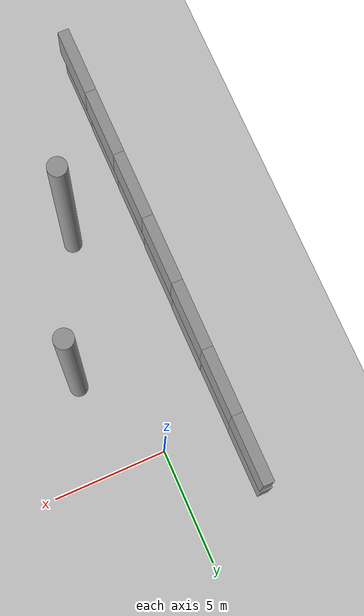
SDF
<sdf version="1.6">
 <world name="default">
  <light name="sun" type="directional">
   <pose>0 0 10 0 -0 0</pose>
   <diffuse>0.8 0.8 0.8 1</diffuse>
   <specular>0.2 0.2 0.2 1</specular>
   <attenuation>
    <range>1000</range>
    <constant>0.9</constant>
    <linear>0.01</linear>
    <quadratic>0.001</quadratic>
   </attenuation>
   <direction>-0.5 0.1 -0.9</direction>
  </light>
  <model name="ground_plane">
   <static>1</static>
   <link name="link">
    <collision name="collision">
     <geometry><plane><normal>0 0 1</normal><size>100 100</size></plane></geometry>
     <surface><friction><ode><mu>100</mu><mu2>50</mu2></ode></friction></surface>
    </collision>
    <visual name="visual">
     <cast_shadows>0</cast_shadows>
     <geometry><plane><normal>0 0 1</normal><size>100 100</size></plane></geometry>
     <material>
      <script><uri>file://media/materials/scripts/gazebo.material</uri><name>Gazebo/Grey</name></script>
     </material>
    </visual>
   </link>
  </model>
  <gravity>0 0 -9.8</gravity>
  <magnetic_field>6e-06 2.3e-05 -4.2e-05</magnetic_field>
  <atmosphere type="adiabatic"/>
  <physics name="default_physics" default="0" type="ode">
   <max_step_size>0.004</max_step_size>
   <real_time_factor>1</real_time_factor>
   <real_time_update_rate>250</real_time_update_rate>
  </physics>
  <scene><ambient>0.4 0.4 0.4 1</ambient><background>0.7 0.7 0.7 1</background><shadows>1</shadows></scene>
  <spherical_coordinates>
   <surface_model>EARTH_WGS84</surface_model>
   <latitude_deg>0</latitude_deg>
   <longitude_deg>0</longitude_deg>
   <elevation>0</elevation>
   <heading_deg>0</heading_deg>
  </spherical_coordinates>
  <model name="column">
   <pose>2.24004 -4 5 0 -0 0</pose>
   <static>1</static>
   <link name="link">
    <inertial>
     <mass>100</mass>
     <inertia><ixx>0.83</ixx><ixy>0</ixy><ixz>0</ixz><iyy>0.83</iyy><iyz>0</iyz><izz>0.83</izz></inertia>
    </inertial>
    <collision name="collision">
     <geometry><cylinder><radius>0.4</radius><length>10</length></cylinder></geometry>
    </collision>
    <visual name="visual">
     <geometry><cylinder><radius>0.4</radius><length>10</length></cylinder></geometry>
     <material>
      <script><uri>file://media/materials/scripts/gazebo.material</uri><name>Gazebo/Grey</name></script>
     </material>
    </visual>
   </link>
  </model>
  <model name="column_clone">
   <pose>0 -10 5 0 -0 0</pose>
   <static>1</static>
   <link name="link">
    <inertial>
     <mass>100</mass>
     <inertia><ixx>0.83</ixx><ixy>0</ixy><ixz>0</ixz><iyy>0.83</iyy><iyz>0</iyz><izz>0.83</izz></inertia>
    </inertial>
    <collision name="collision">
     <geometry><cylinder><radius>0.4</radius><length>10</length></cylinder></geometry>
    </collision>
    <visual name="visual">
     <geometry><cylinder><radius>0.4</radius><length>10</length></cylinder></geometry>
     <material>
      <script><uri>file://media/materials/scripts/gazebo.material</uri><name>Gazebo/Grey</name></script>
     </material>
    </visual>
   </link>
  </model>
  <model name="wall">
   <pose>-3.0634 1.77145 1 0 -0 0</pose>
   <static>1</static>
   <link name="link">
    <inertial>
     <mass>100</mass>
     <inertia><ixx>0.83</ixx><ixy>0</ixy><ixz>0</ixz><iyy>0.83</iyy><iyz>0</iyz><izz>0.83</izz></inertia>
    </inertial>
    <collision name="collision"><geometry><box><size>0.5 3 2</size></box></geometry></collision>
    <visual name="visual">
     <geometry><box><size>0.5 3 2</size></box></geometry>
     <material>
      <script><uri>file://media/materials/scripts/gazebo.material</uri><name>Gazebo/Grey</name></script>
     </material>
    </visual>
   </link>
  </model>
  <model name="wall_clone">
   <pose>-3.07065 -1.2088 1 0 -0 0</pose>
   <static>1</static>
   <link name="link">
    <inertial>
     <mass>100</mass>
     <inertia><ixx>0.83</ixx><ixy>0</ixy><ixz>0</ixz><iyy>0.83</iyy><iyz>0</iyz><izz>0.83</izz></inertia>
    </inertial>
    <collision name="collision"><geometry><box><size>0.5 3 2</size></box></geometry></collision>
    <visual name="visual">
     <geometry><box><size>0.5 3 2</size></box></geometry>
     <material>
      <script><uri>file://media/materials/scripts/gazebo.material</uri><name>Gazebo/Grey</name></script>
     </material>
    </visual>
   </link>
  </model>
  <model name="wall_clone_0">
   <pose>-3.05211 -4.11317 1 0 -0 0</pose>
   <static>1</static>
   <link name="link">
    <inertial>
     <mass>100</mass>
     <inertia><ixx>0.83</ixx><ixy>0</ixy><ixz>0</ixz><iyy>0.83</iyy><iyz>0</iyz><izz>0.83</izz></inertia>
    </inertial>
    <collision name="collision"><geometry><box><size>0.5 3 2</size></box></geometry></collision>
    <visual name="visual">
     <geometry><box><size>0.5 3 2</size></box></geometry>
     <material>
      <script><uri>file://media/materials/scripts/gazebo.material</uri><name>Gazebo/Grey</name></script>
     </material>
    </visual>
   </link>
  </model>
  <model name="wall_clone_1">
   <pose>-3.06986 -7.12548 1 0 -0 0</pose>
   <static>1</static>
   <link name="link">
    <inertial>
     <mass>100</mass>
     <inertia><ixx>0.83</ixx><ixy>0</ixy><ixz>0</ixz><iyy>0.83</iyy><iyz>0</iyz><izz>0.83</izz></inertia>
    </inertial>
    <collision name="collision"><geometry><box><size>0.5 3 2</size></box></geometry></collision>
    <visual name="visual">
     <geometry><box><size>0.5 3 2</size></box></geometry>
     <material>
      <script><uri>file://media/materials/scripts/gazebo.material</uri><name>Gazebo/Grey</name></script>
     </material>
    </visual>
   </link>
  </model>
  <model name="wall_clone_2">
   <pose>-3.09603 -10.0734 1 0 -0 0</pose>
   <static>1</static>
   <link name="link">
    <inertial>
     <mass>100</mass>
     <inertia><ixx>0.83</ixx><ixy>0</ixy><ixz>0</ixz><iyy>0.83</iyy><iyz>0</iyz><izz>0.83</izz></inertia>
    </inertial>
    <collision name="collision"><geometry><box><size>0.5 3 2</size></box></geometry></collision>
    <visual name="visual">
     <geometry><box><size>0.5 3 2</size></box></geometry>
     <material>
      <script><uri>file://media/materials/scripts/gazebo.material</uri><name>Gazebo/Grey</name></script>
     </material>
    </visual>
   </link>
  </model>
  <model name="wall_clone_3">
   <pose>-3.10778 -13.0763 1 0 -0 0</pose>
   <static>1</static>
   <link name="link">
    <inertial>
     <mass>100</mass>
     <inertia><ixx>0.83</ixx><ixy>0</ixy><ixz>0</ixz><iyy>0.83</iyy><iyz>0</iyz><izz>0.83</izz></inertia>
    </inertial>
    <collision name="collision"><geometry><box><size>0.5 3 2</size></box></geometry></collision>
    <visual name="visual">
     <geometry><box><size>0.5 3 2</size></box></geometry>
     <material>
      <script><uri>file://media/materials/scripts/gazebo.material</uri><name>Gazebo/Grey</name></script>
     </material>
    </visual>
   </link>
  </model>
  <model name="wall_clone_4">
   <pose>-3.12562 -16.0775 1 0 -0 0</pose>
   <static>1</static>
   <link name="link">
    <inertial>
     <mass>100</mass>
     <inertia><ixx>0.83</ixx><ixy>0</ixy><ixz>0</ixz><iyy>0.83</iyy><iyz>0</iyz><izz>0.83</izz></inertia>
    </inertial>
    <collision name="collision"><geometry><box><size>0.5 3 2</size></box></geometry></collision>
    <visual name="visual">
     <geometry><box><size>0.5 3 2</size></box></geometry>
     <material>
      <script><uri>file://media/materials/scripts/gazebo.material</uri><name>Gazebo/Grey</name></script>
     </material>
    </visual>
   </link>
  </model>
  <model name="wall_clone_5">
   <pose>-3 1.7 3 0 -0 0</pose>
   <static>1</static>
   <link name="link">
    <inertial>
     <mass>100</mass>
     <inertia><ixx>0.83</ixx><ixy>0</ixy><ixz>0</ixz><iyy>0.83</iyy><iyz>0</iyz><izz>0.83</izz></inertia>
    </inertial>
    <collision name="collision"><geometry><box><size>0.5 3 2</size></box></geometry></collision>
    <visual name="visual">
     <geometry><box><size>0.5 3 2</size></box></geometry>
     <material>
      <script><uri>file://media/materials/scripts/gazebo.material</uri><name>Gazebo/Grey</name></script>
     </material>
    </visual>
   </link>
  </model>
  <model name="wall_clone_clone">
   <pose>-3 -1.2 3 0 -0 0</pose>
   <static>1</static>
   <link name="link">
    <inertial>
     <mass>100</mass>
     <inertia><ixx>0.83</ixx><ixy>0</ixy><ixz>0</ixz><iyy>0.83</iyy><iyz>0</iyz><izz>0.83</izz></inertia>
    </inertial>
    <collision name="collision"><geometry><box><size>0.5 3 2</size></box></geometry></collision>
    <visual name="visual">
     <geometry><box><size>0.5 3 2</size></box></geometry>
     <material>
      <script><uri>file://media/materials/scripts/gazebo.material</uri><name>Gazebo/Grey</name></script>
     </material>
    </visual>
   </link>
  </model>
  <model name="wall_clone_0_clone">
   <pose>-3 -4.2 3 0 -0 0</pose>
   <static>1</static>
   <link name="link">
    <inertial>
     <mass>100</mass>
     <inertia><ixx>0.83</ixx><ixy>0</ixy><ixz>0</ixz><iyy>0.83</iyy><iyz>0</iyz><izz>0.83</izz></inertia>
    </inertial>
    <collision name="collision"><geometry><box><size>0.5 3 2</size></box></geometry></collision>
    <visual name="visual">
     <geometry><box><size>0.5 3 2</size></box></geometry>
     <material>
      <script><uri>file://media/materials/scripts/gazebo.material</uri><name>Gazebo/Grey</name></script>
     </material>
    </visual>
   </link>
  </model>
  <model name="wall_clone_1_clone">
   <pose>-3 -7.2 3 0 -0 0</pose>
   <static>1</static>
   <link name="link">
    <inertial>
     <mass>100</mass>
     <inertia><ixx>0.83</ixx><ixy>0</ixy><ixz>0</ixz><iyy>0.83</iyy><iyz>0</iyz><izz>0.83</izz></inertia>
    </inertial>
    <collision name="collision"><geometry><box><size>0.5 3 2</size></box></geometry></collision>
    <visual name="visual">
     <geometry><box><size>0.5 3 2</size></box></geometry>
     <material>
      <script><uri>file://media/materials/scripts/gazebo.material</uri><name>Gazebo/Grey</name></script>
     </material>
    </visual>
   </link>
  </model>
  <model name="wall_clone_2_clone">
   <pose>-3 -10.2 3 0 -0 0</pose>
   <static>1</static>
   <link name="link">
    <inertial>
     <mass>100</mass>
     <inertia><ixx>0.83</ixx><ixy>0</ixy><ixz>0</ixz><iyy>0.83</iyy><iyz>0</iyz><izz>0.83</izz></inertia>
    </inertial>
    <collision name="collision"><geometry><box><size>0.5 3 2</size></box></geometry></collision>
    <visual name="visual">
     <geometry><box><size>0.5 3 2</size></box></geometry>
     <material>
      <script><uri>file://media/materials/scripts/gazebo.material</uri><name>Gazebo/Grey</name></script>
     </material>
    </visual>
   </link>
  </model>
  <model name="wall_clone_3_clone">
   <pose>-3 -13.2 3 0 -0 0</pose>
   <static>1</static>
   <link name="link">
    <inertial>
     <mass>100</mass>
     <inertia><ixx>0.83</ixx><ixy>0</ixy><ixz>0</ixz><iyy>0.83</iyy><iyz>0</iyz><izz>0.83</izz></inertia>
    </inertial>
    <collision name="collision"><geometry><box><size>0.5 3 2</size></box></geometry></collision>
    <visual name="visual">
     <geometry><box><size>0.5 3 2</size></box></geometry>
     <material>
      <script><uri>file://media/materials/scripts/gazebo.material</uri><name>Gazebo/Grey</name></script>
     </material>
    </visual>
   </link>
  </model>
  <model name="wall_clone_4_clone">
   <pose>-3 -16.2 3 0 -0 0</pose>
   <static>1</static>
   <link name="link">
    <inertial>
     <mass>100</mass>
     <inertia><ixx>0.83</ixx><ixy>0</ixy><ixz>0</ixz><iyy>0.83</iyy><iyz>0</iyz><izz>0.83</izz></inertia>
    </inertial>
    <collision name="collision"><geometry><box><size>0.5 3 2</size></box></geometry></collision>
    <visual name="visual">
     <geometry><box><size>0.5 3 2</size></box></geometry>
     <material>
      <script><uri>file://media/materials/scripts/gazebo.material</uri><name>Gazebo/Grey</name></script>
     </material>
    </visual>
   </link>
  </model>
 </world>
</sdf>
